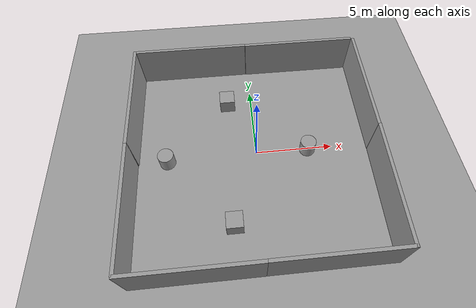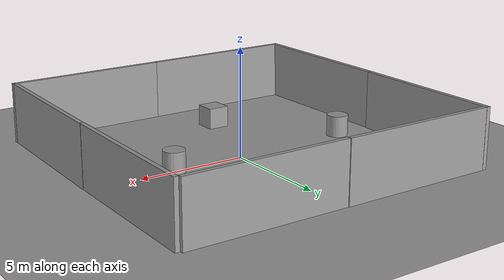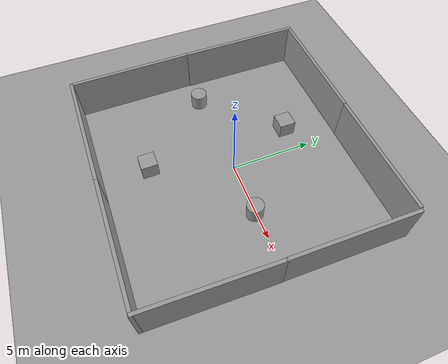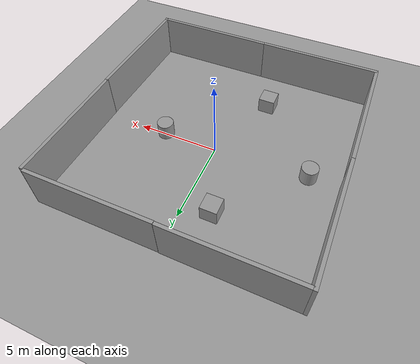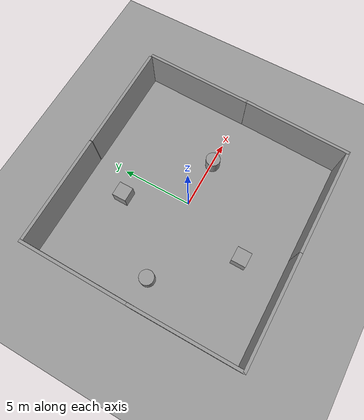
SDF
<sdf version="1.6">
 <world name="default">
  <light name="sun" type="directional">
   <pose>0 0 10 0 -0 0</pose>
   <diffuse>0.8 0.8 0.8 1</diffuse>
   <specular>0.2 0.2 0.2 1</specular>
   <attenuation>
    <range>1000</range>
    <constant>0.9</constant>
    <linear>0.01</linear>
    <quadratic>0.001</quadratic>
   </attenuation>
   <direction>0.5 0.1 -0.9</direction>
  </light>
  <scene><ambient>0.4 0.4 0.4 1</ambient><background>0.7 0.7 0.7 1</background><shadows>1</shadows></scene>
  <physics name="default_physics" default="0" type="ode">
   <max_step_size>0.01</max_step_size>
   <real_time_factor>1</real_time_factor>
   <real_time_update_rate>100</real_time_update_rate>
  </physics>
  <model name="ground_plane_0">
   <static>1</static>
   <link name="link">
    <collision name="collision">
     <geometry><plane><normal>0 0 1</normal><size>100 100</size></plane></geometry>
     <surface><friction><ode><mu>100</mu><mu2>50</mu2></ode></friction></surface>
    </collision>
    <visual name="visual">
     <cast_shadows>0</cast_shadows>
     <geometry><plane><normal>0 0 1</normal><size>100 100</size></plane></geometry>
     <material>
      <script><uri>file://media/materials/scripts/gazebo.material</uri><name>Gazebo/Grey</name></script>
     </material>
    </visual>
    <velocity_decay><linear>0</linear><angular>0</angular></velocity_decay>
   </link>
   <pose>0.497681 0 0 0 -0 0</pose>
  </model>
  <gravity>0 0 -9.8</gravity>
  <magnetic_field>6e-06 2.3e-05 -4.2e-05</magnetic_field>
  <atmosphere type="adiabatic"/>
  <audio><device>default</device></audio>
  <spherical_coordinates>
   <surface_model>EARTH_WGS84</surface_model>
   <latitude_deg>0</latitude_deg>
   <longitude_deg>0</longitude_deg>
   <elevation>0</elevation>
   <heading_deg>0</heading_deg>
  </spherical_coordinates>
  <model name="grey_wall">
   <static>1</static>
   <link name="link">
    <pose>0 0 1.4 0 -0 0</pose>
    <collision name="collision"><geometry><box><size>7.5 0.2 2.8</size></box></geometry></collision>
    <visual name="visual">
     <cast_shadows>0</cast_shadows>
     <geometry><box><size>7.5 0.2 2.8</size></box></geometry>
     <material>
      <script>
       <uri>model://grey_wall/materials/scripts</uri>
       <uri>model://grey_wall/materials/textures</uri>
       <name>vrc/grey_wall</name>
      </script>
     </material>
    </visual>
   </link>
   <pose>3.65477 7.11078 0 0 -0 0</pose>
  </model>
  <model name="grey_wall_0">
   <static>1</static>
   <link name="link">
    <pose>0 0 1.4 0 -0 0</pose>
    <collision name="collision"><geometry><box><size>7.5 0.2 2.8</size></box></geometry></collision>
    <visual name="visual">
     <cast_shadows>0</cast_shadows>
     <geometry><box><size>7.5 0.2 2.8</size></box></geometry>
     <material>
      <script>
       <uri>model://grey_wall/materials/scripts</uri>
       <uri>model://grey_wall/materials/textures</uri>
       <name>vrc/grey_wall</name>
      </script>
     </material>
    </visual>
   </link>
   <pose>-3.86418 7.13067 0 0 -0 0</pose>
  </model>
  <model name="grey_wall_1">
   <static>1</static>
   <link name="link">
    <pose>0 0 1.4 0 -0 0</pose>
    <collision name="collision"><geometry><box><size>7.5 0.2 2.8</size></box></geometry></collision>
    <visual name="visual">
     <cast_shadows>0</cast_shadows>
     <geometry><box><size>7.5 0.2 2.8</size></box></geometry>
     <material>
      <script>
       <uri>model://grey_wall/materials/scripts</uri>
       <uri>model://grey_wall/materials/textures</uri>
       <name>vrc/grey_wall</name>
      </script>
     </material>
    </visual>
   </link>
   <pose>-3.97848 -7.74667 0 0 -0 0</pose>
  </model>
  <model name="grey_wall_2">
   <static>1</static>
   <link name="link">
    <pose>0 0 1.4 0 -0 0</pose>
    <collision name="collision"><geometry><box><size>7.5 0.2 2.8</size></box></geometry></collision>
    <visual name="visual">
     <cast_shadows>0</cast_shadows>
     <geometry><box><size>7.5 0.2 2.8</size></box></geometry>
     <material>
      <script>
       <uri>model://grey_wall/materials/scripts</uri>
       <uri>model://grey_wall/materials/textures</uri>
       <name>vrc/grey_wall</name>
      </script>
     </material>
    </visual>
   </link>
   <pose>3.50574 -7.74075 0 0 -0 0</pose>
  </model>
  <model name="grey_wall_3">
   <static>1</static>
   <link name="link">
    <pose>0 0 1.4 0 -0 0</pose>
    <collision name="collision"><geometry><box><size>7.5 0.2 2.8</size></box></geometry></collision>
    <visual name="visual">
     <cast_shadows>0</cast_shadows>
     <geometry><box><size>7.5 0.2 2.8</size></box></geometry>
     <material>
      <script>
       <uri>model://grey_wall/materials/scripts</uri>
       <uri>model://grey_wall/materials/textures</uri>
       <name>vrc/grey_wall</name>
      </script>
     </material>
    </visual>
   </link>
   <pose>-7.67784 3.48488 0 0 -0 1.56583</pose>
  </model>
  <model name="grey_wall_4">
   <static>1</static>
   <link name="link">
    <pose>0 0 1.4 0 -0 0</pose>
    <collision name="collision"><geometry><box><size>7.5 0.2 2.8</size></box></geometry></collision>
    <visual name="visual">
     <cast_shadows>0</cast_shadows>
     <geometry><box><size>7.5 0.2 2.8</size></box></geometry>
     <material>
      <script>
       <uri>model://grey_wall/materials/scripts</uri>
       <uri>model://grey_wall/materials/textures</uri>
       <name>vrc/grey_wall</name>
      </script>
     </material>
    </visual>
   </link>
   <pose>-7.71893 -4.00325 0 -0.017271 -0 -1.56424</pose>
  </model>
  <model name="grey_wall_5">
   <static>1</static>
   <link name="link">
    <pose>0 0 1.4 0 -0 0</pose>
    <collision name="collision"><geometry><box><size>7.5 0.2 2.8</size></box></geometry></collision>
    <visual name="visual">
     <cast_shadows>0</cast_shadows>
     <geometry><box><size>7.5 0.2 2.8</size></box></geometry>
     <material>
      <script>
       <uri>model://grey_wall/materials/scripts</uri>
       <uri>model://grey_wall/materials/textures</uri>
       <name>vrc/grey_wall</name>
      </script>
     </material>
    </visual>
   </link>
   <pose>7.45827 3.34229 0 0 0 -1.59168</pose>
  </model>
  <model name="grey_wall_6">
   <static>1</static>
   <link name="link">
    <pose>0 0 1.4 0 -0 0</pose>
    <collision name="collision"><geometry><box><size>7.5 0.2 2.8</size></box></geometry></collision>
    <visual name="visual">
     <cast_shadows>0</cast_shadows>
     <geometry><box><size>7.5 0.2 2.8</size></box></geometry>
     <material>
      <script>
       <uri>model://grey_wall/materials/scripts</uri>
       <uri>model://grey_wall/materials/textures</uri>
       <name>vrc/grey_wall</name>
      </script>
     </material>
    </visual>
   </link>
   <pose>7.27159 -4.07289 0 0 -0 1.53716</pose>
  </model>
  <model name="unit_box">
   <pose>-1.73269 -4.81771 0.49907 -0.0001 0 0</pose>
   <link name="link">
    <inertial>
     <mass>1</mass>
     <inertia>
      <ixx>0.166667</ixx>
      <ixy>0</ixy>
      <ixz>0</ixz>
      <iyy>0.166667</iyy>
      <iyz>0</iyz>
      <izz>0.166667</izz>
     </inertia>
    </inertial>
    <collision name="collision"><geometry><box><size>1 1 1</size></box></geometry></collision>
    <visual name="visual">
     <geometry><box><size>1 1 1</size></box></geometry>
     <material>
      <script><name>Gazebo/Grey</name><uri>file://media/materials/scripts/gazebo.material</uri></script>
     </material>
    </visual>
   </link>
  </model>
  <model name="unit_box_0">
   <pose>-1.63771 4.09516 0.49967 0.00066 -0 0</pose>
   <link name="link">
    <inertial>
     <mass>1</mass>
     <inertia>
      <ixx>0.166667</ixx>
      <ixy>0</ixy>
      <ixz>0</ixz>
      <iyy>0.166667</iyy>
      <iyz>0</iyz>
      <izz>0.166667</izz>
     </inertia>
    </inertial>
    <collision name="collision"><geometry><box><size>1 1 1</size></box></geometry></collision>
    <visual name="visual">
     <geometry><box><size>1 1 1</size></box></geometry>
     <material>
      <script><name>Gazebo/Grey</name><uri>file://media/materials/scripts/gazebo.material</uri></script>
     </material>
    </visual>
   </link>
  </model>
  <model name="unit_cylinder">
   <pose>-5.73944 -0.220064 0.49912 0 0 -4e-06</pose>
   <link name="link">
    <inertial>
     <mass>1</mass>
     <inertia><ixx>0.145833</ixx><ixy>0</ixy><ixz>0</ixz><iyy>0.145833</iyy><iyz>0</iyz><izz>0.125</izz></inertia>
    </inertial>
    <collision name="collision">
     <geometry><cylinder><radius>0.5</radius><length>1</length></cylinder></geometry>
    </collision>
    <visual name="visual">
     <geometry><cylinder><radius>0.5</radius><length>1</length></cylinder></geometry>
     <material>
      <script><name>Gazebo/Grey</name><uri>file://media/materials/scripts/gazebo.material</uri></script>
     </material>
    </visual>
   </link>
  </model>
  <model name="unit_cylinder_0">
   <pose>3.34388 -0.082127 0.499789 0.000422 0.000422 -3e-06</pose>
   <link name="link">
    <inertial>
     <mass>1</mass>
     <inertia><ixx>0.145833</ixx><ixy>0</ixy><ixz>0</ixz><iyy>0.145833</iyy><iyz>0</iyz><izz>0.125</izz></inertia>
    </inertial>
    <collision name="collision">
     <geometry><cylinder><radius>0.5</radius><length>1</length></cylinder></geometry>
    </collision>
    <visual name="visual">
     <geometry><cylinder><radius>0.5</radius><length>1</length></cylinder></geometry>
     <material>
      <script><name>Gazebo/Grey</name><uri>file://media/materials/scripts/gazebo.material</uri></script>
     </material>
    </visual>
   </link>
  </model>
 </world>
</sdf>
